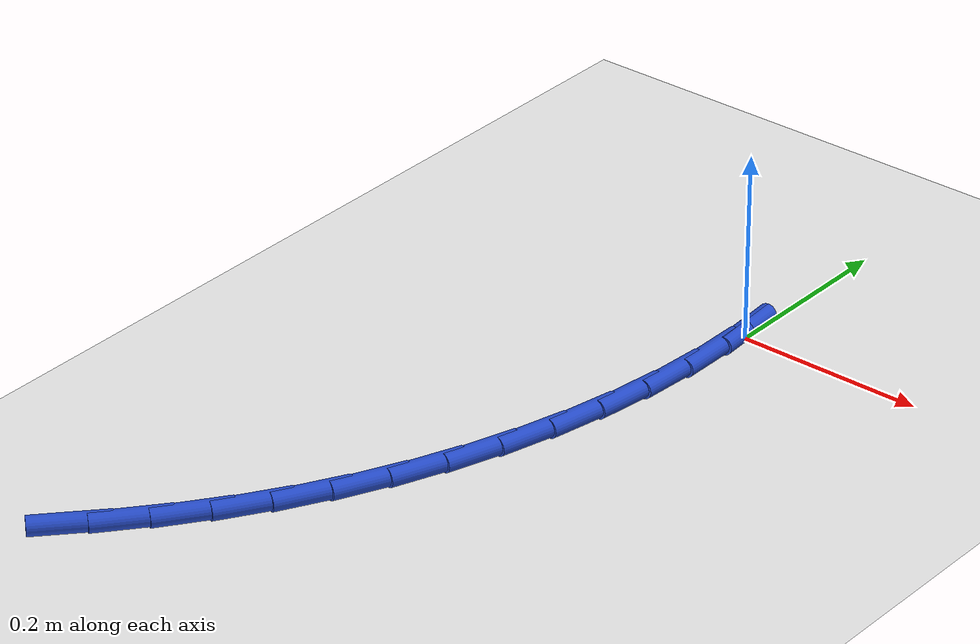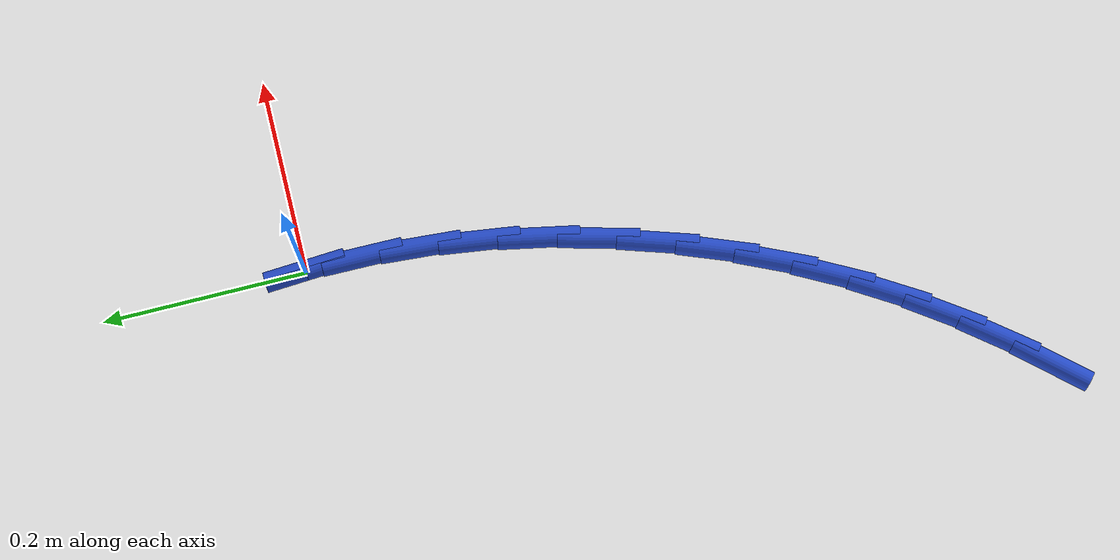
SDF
<sdf version="1.6">
 <world name="default">
  <model name="ground_plane">
   <static>1</static>
   <link name="link">
    <collision name="collision">
     <geometry><plane><normal>0 0 1</normal><size>100 100</size></plane></geometry>
     <surface><friction><ode><mu>100</mu><mu2>50</mu2></ode></friction></surface>
    </collision>
    <visual name="visual">
     <cast_shadows>0</cast_shadows>
     <geometry><plane><normal>0 0 1</normal><size>100 100</size></plane></geometry>
     <material>
      <script><uri>file://media/materials/scripts/gazebo.material</uri><name>Gazebo/WhiteGlow</name></script>
     </material>
    </visual>
   </link>
  </model>
  <model name="line">
   <link name="link_0">
    <pose>-4.85722573273506e-17 2.7755575615628914e-17 0.01 0 1.57 -1.5082318047405001</pose>
    <collision name="collision">
     <geometry><cylinder><radius>0.01</radius><length>0.08</length></cylinder></geometry>
    </collision>
    <visual name="visual">
     <material>
      <script><name>Gazebo/Blue</name><uri>file://media/materials/scripts/gazebo.material</uri></script>
     </material>
     <geometry><cylinder><radius>0.01</radius><length>0.08</length></cylinder></geometry>
    </visual>
   </link>
   <link name="link_107">
    <pose>-0.26371561780472397 -0.6680980791086805 0.01 0 1.57 0.8340334390939713</pose>
    <collision name="collision">
     <geometry><cylinder><radius>0.01</radius><length>0.08</length></cylinder></geometry>
    </collision>
    <visual name="visual">
     <material>
      <script><name>Gazebo/Blue</name><uri>file://media/materials/scripts/gazebo.material</uri></script>
     </material>
     <geometry><cylinder><radius>0.01</radius><length>0.08</length></cylinder></geometry>
    </visual>
   </link>
   <link name="link_108">
    <pose>-0.2261886976842207 -0.6267311044447438 0.01 0 1.57 0.8881177228624371</pose>
    <collision name="collision">
     <geometry><cylinder><radius>0.01</radius><length>0.08</length></cylinder></geometry>
    </collision>
    <visual name="visual">
     <material>
      <script><name>Gazebo/Blue</name><uri>file://media/materials/scripts/gazebo.material</uri></script>
     </material>
     <geometry><cylinder><radius>0.01</radius><length>0.08</length></cylinder></geometry>
    </visual>
   </link>
   <link name="link_109">
    <pose>-0.1910332526547183 -0.5834948584266603 0.01 0 1.57 0.9463432393899457</pose>
    <collision name="collision">
     <geometry><cylinder><radius>0.01</radius><length>0.08</length></cylinder></geometry>
    </collision>
    <visual name="visual">
     <material>
      <script><name>Gazebo/Blue</name><uri>file://media/materials/scripts/gazebo.material</uri></script>
     </material>
     <geometry><cylinder><radius>0.01</radius><length>0.08</length></cylinder></geometry>
    </visual>
   </link>
   <link name="link_110">
    <pose>-0.1584024628945011 -0.5382153935263475 0.01 0 1.57 1.0081501482683746</pose>
    <collision name="collision">
     <geometry><cylinder><radius>0.01</radius><length>0.08</length></cylinder></geometry>
    </collision>
    <visual name="visual">
     <material>
      <script><name>Gazebo/Blue</name><uri>file://media/materials/scripts/gazebo.material</uri></script>
     </material>
     <geometry><cylinder><radius>0.01</radius><length>0.08</length></cylinder></geometry>
    </visual>
   </link>
   <link name="link_111">
    <pose>-0.12844946644766647 -0.49071935319367105 0.01 0 1.57 1.071484796298717</pose>
    <collision name="collision">
     <geometry><cylinder><radius>0.01</radius><length>0.08</length></cylinder></geometry>
    </collision>
    <visual name="visual">
     <material>
      <script><name>Gazebo/Blue</name><uri>file://media/materials/scripts/gazebo.material</uri></script>
     </material>
     <geometry><cylinder><radius>0.01</radius><length>0.08</length></cylinder></geometry>
    </visual>
   </link>
   <link name="link_112">
    <pose>-0.1013174374389989 -0.4409731357176899 0.01 0 1.57 1.1332333082206092</pose>
    <collision name="collision">
     <geometry><cylinder><radius>0.01</radius><length>0.08</length></cylinder></geometry>
    </collision>
    <visual name="visual">
     <material>
      <script><name>Gazebo/Blue</name><uri>file://media/materials/scripts/gazebo.material</uri></script>
     </material>
     <geometry><cylinder><radius>0.01</radius><length>0.08</length></cylinder></geometry>
    </visual>
   </link>
   <link name="link_113">
    <pose>-0.07712678991548999 -0.3892623743102282 0.01 0 1.57 1.19362508695071</pose>
    <collision name="collision">
     <geometry><cylinder><radius>0.01</radius><length>0.08</length></cylinder></geometry>
    </collision>
    <visual name="visual">
     <material>
      <script><name>Gazebo/Blue</name><uri>file://media/materials/scripts/gazebo.material</uri></script>
     </material>
     <geometry><cylinder><radius>0.01</radius><length>0.08</length></cylinder></geometry>
    </visual>
   </link>
   <link name="link_114">
    <pose>-0.05599477460528984 -0.33591707118108854 0.01 0 1.57 1.2533416295282573</pose>
    <collision name="collision">
     <geometry><cylinder><radius>0.01</radius><length>0.08</length></cylinder></geometry>
    </collision>
    <visual name="visual">
     <material>
      <script><name>Gazebo/Blue</name><uri>file://media/materials/scripts/gazebo.material</uri></script>
     </material>
     <geometry><cylinder><radius>0.01</radius><length>0.08</length></cylinder></geometry>
    </visual>
   </link>
   <link name="link_115">
    <pose>-0.038038642236548736 -0.2812672285400738 0.01 0 1.57 1.3130522572860326</pose>
    <collision name="collision">
     <geometry><cylinder><radius>0.01</radius><length>0.08</length></cylinder></geometry>
    </collision>
    <visual name="visual">
     <material>
      <script><name>Gazebo/Blue</name><uri>file://media/materials/scripts/gazebo.material</uri></script>
     </material>
     <geometry><cylinder><radius>0.01</radius><length>0.08</length></cylinder></geometry>
    </visual>
   </link>
   <link name="link_116">
    <pose>-0.023375643537417595 -0.22564284859698844 0.01 0 1.57 1.3734207381843442</pose>
    <collision name="collision">
     <geometry><cylinder><radius>0.01</radius><length>0.08</length></cylinder></geometry>
    </collision>
    <visual name="visual">
     <material>
      <script><name>Gazebo/Blue</name><uri>file://media/materials/scripts/gazebo.material</uri></script>
     </material>
     <geometry><cylinder><radius>0.01</radius><length>0.08</length></cylinder></geometry>
    </visual>
   </link>
   <link name="link_117">
    <pose>-0.012123029236046676 -0.1693739335616352 0.01 0 1.57 1.4351115178490585</pose>
    <collision name="collision">
     <geometry><cylinder><radius>0.01</radius><length>0.08</length></cylinder></geometry>
    </collision>
    <visual name="visual">
     <material>
      <script><name>Gazebo/Blue</name><uri>file://media/materials/scripts/gazebo.material</uri></script>
     </material>
     <geometry><cylinder><radius>0.01</radius><length>0.08</length></cylinder></geometry>
    </visual>
   </link>
   <link name="link_118">
    <pose>-0.00439805006058645 -0.11279048564381722 0.01 0 1.57 1.4987937543211372</pose>
    <collision name="collision">
     <geometry><cylinder><radius>0.01</radius><length>0.08</length></cylinder></geometry>
    </collision>
    <visual name="visual">
     <material>
      <script><name>Gazebo/Blue</name><uri>file://media/materials/scripts/gazebo.material</uri></script>
     </material>
     <geometry><cylinder><radius>0.01</radius><length>0.08</length></cylinder></geometry>
    </visual>
   </link>
   <link name="link_119">
    <pose>-0.0003179567391873774 -0.056222507053337235 0.01 0 1.57 1.5651410587144177</pose>
    <collision name="collision">
     <geometry><cylinder><radius>0.01</radius><length>0.08</length></cylinder></geometry>
    </collision>
    <visual name="visual">
     <material>
      <script><name>Gazebo/Blue</name><uri>file://media/materials/scripts/gazebo.material</uri></script>
     </material>
     <geometry><cylinder><radius>0.01</radius><length>0.08</length></cylinder></geometry>
    </visual>
   </link>
   <link name="link_120">
    <pose>-4.5102810375396984e-17 9.71445146547012e-17 0.01 0 1.57 -1.5067683807191683</pose>
    <collision name="collision">
     <geometry><cylinder><radius>0.01</radius><length>0.08</length></cylinder></geometry>
    </collision>
    <visual name="visual">
     <material>
      <script><name>Gazebo/Blue</name><uri>file://media/materials/scripts/gazebo.material</uri></script>
     </material>
     <geometry><cylinder><radius>0.01</radius><length>0.08</length></cylinder></geometry>
    </visual>
   </link>
  </model>
 </world>
</sdf>
